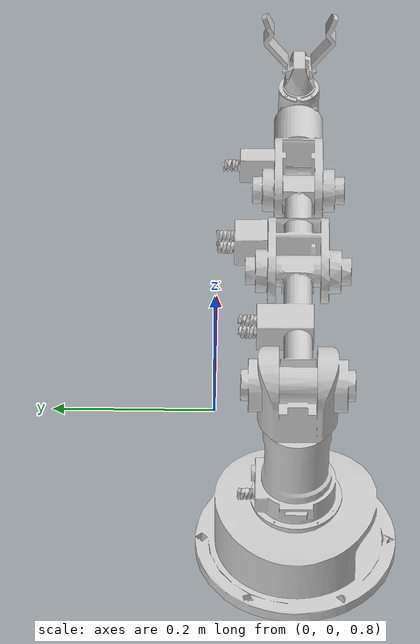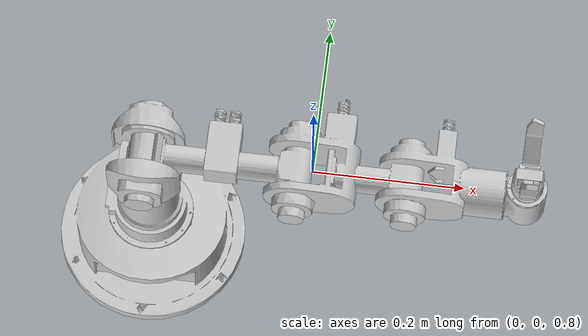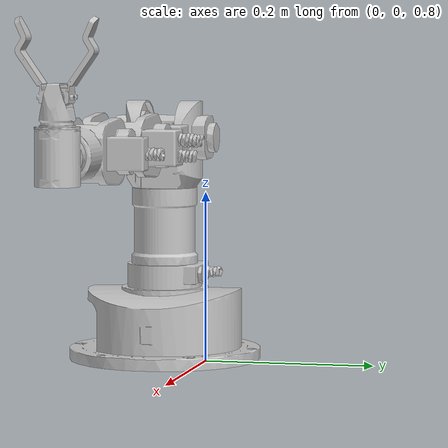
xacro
<?xml version="1.0"?>

<robot xmlns:xacro="http://ros.org/wiki/xacro"
       name="katana_400_6m90G">

-->

<xacro:include filename="$(find katana400_6m90a)/urdf/transmissions_effort.urdf.xacro"/>

  <xacro:include filename="$(find katana400_6m90a)/urdf/gazebo.urdf.xacro"/>

  <property name="M_PI" value="3.1415926535897931" />

  <!-- all values from the katana manual -->
  <property name="base_height" value="0.2015" />
  <property name="link2_length" value="0.19" />
  <property name="link3_length" value="0.139" />
  <property name="link4_length" value="0.1473" />
  <property name="link5_length" value="0.1505" />
  <property name="tool_frame_offset" value="0.11" />

 <property name="controlbox_height" value="0.073" />

<link name="world"/>
  <joint name="world_joint" type="fixed">
    <parent link="world"/>
    <child link="katana_internal_controlbox_link"/>
    <origin rpy="0.0 0.0 0.0" xyz="-0.2 -0.1 0.78"/>
  </joint>

  <link name="katana_internal_controlbox_link">
    <visual>
      <origin xyz="0 0 0" rpy="0 0 ${M_PI}" />
      <geometry>
        <mesh filename="package://katana_description/meshes/katana/katana_internal_controlbox.stl" />
      </geometry>

      <material name="grey">
        <color rgba="0.8 0.8 0.8 1"/>
      </material>
    </visual>

    <collision>
    <origin xyz="0 0 0" rpy="0 0 ${M_PI}" />
      <geometry>
        <mesh filename="package://katana_description/meshes/katana/convex/katana_internal_controlbox_convex.stl" />
      </geometry>
    </collision>
    <inertial>
      <mass value="4.47057045" />
      <origin xyz="0.000024 -0.006508 0.030555" />
      <inertia ixx="0.013760086" ixy="-0.000000539" ixz="-0.000000442"
        iyy="0.015251808" iyz="0.000361753"
        izz="0.023409309" />
    </inertial>
  </link>

  <joint name="katana_base_joint" type="fixed">
    <parent link="katana_internal_controlbox_link"/>
    <child link="katana_base_link"/>
    <origin xyz="0 0 ${controlbox_height}"/>
  </joint>

  <gazebo reference="katana_internal_controlbox_link">
    <material value="Gazebo/Grey" />
  </gazebo>

  <link name="katana_base_link">
    <visual>
      <origin xyz="0 0 0" rpy="0 0 0" />
      <geometry>
        <mesh filename="package://katana_description/meshes/katana/katana_base_link.stl"/>
      </geometry>

      <material name="grey">
        <color rgba="0.8 0.8 0.8 1"/>
      </material>
    </visual>
    <collision>
      <origin xyz="0 0 0" rpy="0 0 0" />
      <geometry>
        <mesh filename="package://katana_description/meshes/katana/convex/katana_base_link_convex.stl"/>
      </geometry>
    </collision>
    <inertial>
      <mass value="1.4047990875" />
      <origin xyz="-0.000327 0.000908 0.058457"/>
      <inertia ixx="0.003000703" ixy="0.000000864" ixz="-0.000011312"
        iyy="0.002974822" iyz="0.000036294"
        izz="0.001434739" />
    </inertial>
  </link>

  <joint name="katana_motor1_pan_joint" type="revolute">
    <!-- Joint 1 in Katana Manual -->
    <parent link="katana_base_link"/>
    <child link="katana_motor1_pan_link" />
    <origin xyz="0 0 ${base_height}" rpy="0 0 0"/>
    <axis xyz="0 0 1"/>
    <limit effort="1.5" lower="-3.025528" upper="2.891097" velocity="2.208932"/>
  </joint>

  <link name="katana_motor1_pan_link">
    <visual>
      <origin xyz="0 0 ${-base_height}" rpy="0 0 0" />
      <geometry>
        <mesh filename="package://katana_description/meshes/katana/katana_motor1_pan_link.stl"/>
      </geometry>

      <material name="grey" />
    </visual>
    <collision>
      <origin xyz="0 0 ${-base_height}" rpy="0 0 0" />
      <geometry>
        <mesh filename="package://katana_description/meshes/katana/convex/katana_motor1_pan_link_convex.stl"/>
      </geometry>
    </collision>
    <inertial>
      <mass value="0.74793301875" />
      <origin xyz="-0.000410 -0.001285 -0.016774" />
      <inertia ixx="0.001737241" ixy="0.000000421" ixz="0.000000650"
        iyy="0.000998782" iyz="0.000016114"
        izz="0.001349170" />
    </inertial>
  </link>

  <joint name="katana_motor2_lift_joint" type="revolute">
    <!-- Joint 2 in Katana Manual -->
    <parent link="katana_motor1_pan_link" />
    <child link="katana_motor2_lift_link" />
    <origin xyz="0 0 0" rpy="${M_PI/2} 0 0"/>
    <axis xyz="0 0 1"/>
    <limit effort="0.6" lower="-0.135228" upper="2.168572"  velocity="1.190799"/>
  </joint>

  <link name="katana_motor2_lift_link">
      <visual>
        <origin rpy="${-M_PI/2} 0 0" xyz="0 0 0"/>
        <geometry>
          <mesh filename="package://katana_description/meshes/katana/katana_motor2_lift_link.stl"/>
        </geometry>

        <material name="grey" />
      </visual>
      <collision>
        <origin rpy="${-M_PI/2} 0 0" xyz="0 0 0"/>
        <geometry>
          <mesh filename="package://katana_description/meshes/katana/convex/katana_motor2_lift_link_convex.stl"/>
        </geometry>
      </collision>
      <inertial>
        <mass value="0.80174941875" />
        <origin xyz="0.092420 0.005283 0.000172"/>
        <inertia ixx="0.000478252" ixy="0.000081166" ixz="0.000003961"
          iyy="0.004314636" iyz="0.000000332"
          izz="0.004625444" />
      </inertial>
  </link>

  <joint name="katana_motor3_lift_joint" type="revolute">
    <!-- Joint 3 in Katana Manual -->
    <parent link="katana_motor2_lift_link" />
    <child  link="katana_motor3_lift_link" />
    <origin xyz="${link2_length} 0 0" rpy="0 0 0"/>
    <axis xyz="0 0 1"/>
    <!-- unexplicably, the measured velocity limit of this motor is exactly half of what vel_enc2rad(180) says -->
    <limit effort="0.25" lower="-2.221804" upper="2.054223"  velocity="1.190799"/>
  </joint>

  <link name="katana_motor3_lift_link">
      <visual>
        <origin rpy="${-M_PI/2} 0 0" xyz="0 0 0"/>
        <geometry>
          <mesh filename="package://katana_description/meshes/katana/katana_motor3_lift_link.stl"/>
        </geometry>

        <material name="grey" />
      </visual>
      <collision>
        <origin rpy="${-M_PI/2} 0 0" xyz="0 0 0"/>
        <geometry>
          <mesh filename="package://katana_description/meshes/katana/convex/katana_motor3_lift_link_convex.stl"/>
        </geometry>
      </collision>
      <inertial>
        <mass value="0.79241664375" />
        <origin xyz="0.058036 0.008963 -0.000187"/>
        <inertia ixx="0.001156089" ixy="0.000112877" ixz="-0.000004398"
          iyy="0.002305646" iyz="-0.000000036"
          izz="0.003128648" />
      </inertial>
    </link>

  <joint name="katana_motor4_lift_joint" type="revolute">
    <!-- Joint 4 in Katana Manual -->
    <parent link="katana_motor3_lift_link" />
    <child  link="katana_motor4_lift_link" />
    <origin rpy="${M_PI} 0 0" xyz="${link3_length} 0 0"/>
    <axis xyz="0 0 1"/>
    <limit effort="0.1" lower="-2.033309" upper="1.876133"  velocity="2.208932"/>
  </joint>

  <link name="katana_motor4_lift_link">
      <visual>
        <origin rpy="${M_PI/2} 0 0" xyz="0 0 0"/>
        <geometry>
          <mesh filename="package://katana_description/meshes/katana/katana_motor4_lift_link.stl"/>
        </geometry>

        <material name="grey" />
      </visual>
      <collision>
        <origin rpy="${M_PI/2} 0 0" xyz="0 0 0"/>
        <geometry>
          <mesh filename="package://katana_description/meshes/katana/convex/katana_motor4_lift_link_convex.stl"/>
        </geometry>
      </collision>
      <inertial>
        <mass value="0.69149323125" />
        <origin xyz="0.050401 0.005807 0.000000"/>
        <inertia ixx="0.000765999" ixy="0.000045260" ixz="-0.000001210"
          iyy="0.001504115" iyz="0.000000147"
          izz="0.001887277" />
      </inertial>
    </link>

  <joint name="katana_motor5_wrist_roll_joint" type="revolute">
    <!-- Joint 5 in Katana Manual -->
    <parent link="katana_motor4_lift_link" />
    <child  link="katana_motor5_wrist_roll_link" />
    <origin rpy="${M_PI/2} 0 ${-M_PI/2}" xyz="${link4_length} 0 0"/>
    <axis xyz="0 0 1"/>
    <limit effort="0.01" lower="-2.993240" upper="2.870985"  velocity="2.208932"/>
  </joint>

  <link name="katana_motor5_wrist_roll_link">
      <visual>
        <origin rpy="0 ${M_PI/2} 0" xyz="0 0 0"/>
        <geometry>
          <mesh filename="package://katana_description/meshes/katana/katana_motor5_wrist_roll_link.stl"/>
        </geometry>

        <material name="grey" />
      </visual>
      <collision>
        <origin rpy="0 ${M_PI/2} 0" xyz="0 0 0"/>
        <geometry>
          <mesh filename="package://katana_description/meshes/katana/convex/katana_motor5_wrist_roll_link_convex.stl"/>
        </geometry>
      </collision>
      <inertial>
        <mass value="0.25622555625" />
        <origin xyz="-0.003140899 0.000013920 0.001680144"/>
        <inertia ixx="0.000120481" ixy="0.000000015" ixz="-0.000001089"
          iyy="0.000132130" iyz="-0.000000124"
          izz="0.000093522" />
      </inertial>
    </link>

  <joint name="katana_gripper_joint" type="fixed">
    <parent link="katana_motor5_wrist_roll_link" />
    <child link="katana_gripper_link" />
    <origin rpy="0 0 0" xyz="0.0323 0 0"/>
  </joint>

  <link name="katana_gripper_link">
      <visual>
        <origin rpy="0 ${M_PI} 0" xyz="0 0 0"/>
        <geometry>
          <mesh filename="package://katana_description/meshes/katana/katana_gripper_link.stl"/>
        </geometry>

        <material name="grey" />
      </visual>
      <collision>
        <origin rpy="0 ${M_PI} 0" xyz="0 0 0"/>
        <geometry>
          <mesh filename="package://katana_description/meshes/katana/convex/katana_gripper_link_convex.stl"/>
        </geometry>
      </collision>
      <inertial>
        <mass value="0.0552136183596" />
        <origin xyz="-0.014379 -0.000000 0.000006"/>
        <inertia ixx="0.000011468" ixy="0.000000000" ixz="0.000000007"
          iyy="0.000013830" iyz="0.000000000"
          izz="0.000011290" /></inertial>
    </link>

  <xacro:macro name="finger" params="prefix rotate">
    <joint name="katana_${prefix}_finger_joint" type="revolute">
      <parent link="katana_gripper_link" />
      <child  link="katana_${prefix}_finger_link" />
      <origin rpy="${rotate} 0 0" xyz="0.034 0 0"/>
      <axis xyz="0 0 1"/>
      <limit effort="0.5" lower="-0.44" upper="0.30"  velocity="0.718834"/>
   </joint>

    <link name="katana_${prefix}_finger_link">
        <visual>
          <origin rpy="0 ${M_PI} 0" xyz="0 0 0"/>
          <geometry>
            <mesh filename="package://katana_description/meshes/katana/katana_gripper_${prefix}_finger.stl"/>
          </geometry>

          <material name="grey" />
        </visual>
        <collision>
          <origin rpy="0 ${M_PI} 0" xyz="0 0 0"/>
          <geometry>
            <mesh filename="package://katana_description/meshes/katana/convex/katana_gripper_${prefix}_finger_convex.stl"/>
          </geometry>
        </collision>
        <inertial>
          <mass value="0.0251722230462" />
          <origin xyz="${0.034 + (-0.032216)} 0.025167 -.001603"/>
          <inertia ixx="0.000005990" ixy="0.000008473" ixz="0.000001448"
            iyy="0.000019757" iyz="-0.000000996"
            izz="0.000023588" />
        </inertial>
      </link>
    </xacro:macro>

  <xacro:finger prefix="r" rotate="0" />
  <xacro:finger prefix="l" rotate="${M_PI}" />

  <joint name="katana_gripper_tool_frame_joint" type="fixed">
    <parent link="katana_motor5_wrist_roll_link"/>
    <child link="katana_gripper_tool_frame" />
    <origin xyz="${tool_frame_offset} 0 0" rpy="0 ${M_PI/2} 0"/>
  </joint>

  <link name="katana_gripper_tool_frame">
    <!-- This is the coordinate system of the end effector (this is the position
         used in IK); there is no actual arm part attached to this link -->

    <!-- The fake geometry here is only present to work around https://github.com/ros-planning/moveit_core/issues/158 -->
    <visual>
      <origin rpy="0 0 0" xyz="0 0 -${tool_frame_offset}"/>
      <geometry>
        <box size="0.01 0.01 0.01"/>
      </geometry>
      <material name="grey" />
    </visual>
    <collision>
      <origin rpy="0 0 0" xyz="0 0 -${tool_frame_offset}"/>
      <geometry>
        <box size="0.01 0.01 0.01"/>
      </geometry>
      <material name="grey" />
    </collision>
    <inertial>
      <mass value="0.0012" />
      <origin xyz="0 0 0"/>
      <inertia ixx="2e-8" ixy="0.0" ixz="0.0"
        iyy="2e-8" iyz="0.0"
        izz="2e-8" />
    </inertial>
  </link>

  <!--kinect parameters-->
  <xacro:property name="kinect_cam_py" value="-0.0125"/>
  <xacro:property name="M_PI" value="3.14159265" />

    <!-- kinetic -->
  <joint name="kinect_joint" type="fixed">
     <axis xyz="0 0 0" />
      <origin xyz="1.64687 -1.56858 1.5046" rpy="0 -0.0001 2.17579" />
     <parent link="world"/>
     <child link="kinect_link"/>
  </joint>

  <!--we should add inertial tag for kinect link for avoid plugin not working, because gazebo need it-->
  <link name="kinect_link">
    <inertial>
      <mass value="0.1" />
      <inertia ixx="1" ixy="0" ixz="0" iyy="1" iyz="0" izz="1" />
    </inertial>
  </link>

  <joint name="camera_rgb_joint" type="fixed">
    <origin xyz="0.031 ${kinect_cam_py} 0.016" rpy="0 0 0"/>
    <parent link="kinect_link"/>
    <child link="camera_rgb_frame" />
  </joint>
  <link name="camera_rgb_frame"/>

  <joint name="camera_rgb_optical_joint" type="fixed">
    <origin xyz="0 0 0" rpy="${-M_PI/2} 0 ${-M_PI/2}" />
    <parent link="camera_rgb_frame" />
    <child link="camera_rgb_optical_frame" />
  </joint>
  <link name="camera_rgb_optical_frame"/>

  <joint name="camera_depth_joint" type="fixed">
      <origin xyz="0 ${2 * -kinect_cam_py} 0" rpy="0 0 0" />
      <parent link="camera_rgb_frame" />
      <child link="camera_depth_frame" />
    </joint>
    <link name="camera_depth_frame"/>

    <joint name="camera_depth_optical_joint" type="fixed">
      <origin xyz="0 0 0" rpy="${-M_PI/2} 0 ${-M_PI/2}" />
      <parent link="camera_depth_frame" />
      <child link="camera_depth_optical_frame" />
    </joint>
  <link name="camera_depth_optical_frame"/>

  <!--add kinect plugin-->
  <gazebo reference="kinect_link">
      <sensor type="depth" name="kinect_camera">
        <always_on>true</always_on>
        <update_rate>20.0</update_rate>
        <camera>
          <horizontal_fov>${60.0*M_PI/180.0}</horizontal_fov>
          <image>
            <format>R8G8B8</format>
            <width>640</width>
            <height>480</height>
          </image>
          <clip>
            <near>0.05</near>
            <far>3.0</far>
          </clip>
        </camera>
        <plugin name="kinect_camera_controller" filename="libgazebo_ros_openni_kinect.so">
          <cameraName>3dcamera</cameraName>
          <alwaysOn>true</alwaysOn>
          <updateRate>20</updateRate>
          <imageTopicName>rgb/image_raw</imageTopicName>
          <depthImageTopicName>depth/image_raw</depthImageTopicName>
          <pointCloudTopicName>depth/points</pointCloudTopicName>
          <cameraInfoTopicName>rgb/camera_info</cameraInfoTopicName>
          <depthImageCameraInfoTopicName>depth/camera_info</depthImageCameraInfoTopicName>
          <frameName>camera_depth_optical_frame</frameName>
          <baseline>0.1</baseline>
          <distortion_k1>0.0</distortion_k1>
          <distortion_k2>0.0</distortion_k2>
          <distortion_k3>0.0</distortion_k3>
          <distortion_t1>0.0</distortion_t1>
          <distortion_t2>0.0</distortion_t2>
          <pointCloudCutoff>0.4</pointCloudCutoff>
        </plugin>
        </sensor>
  </gazebo>

</robot>
